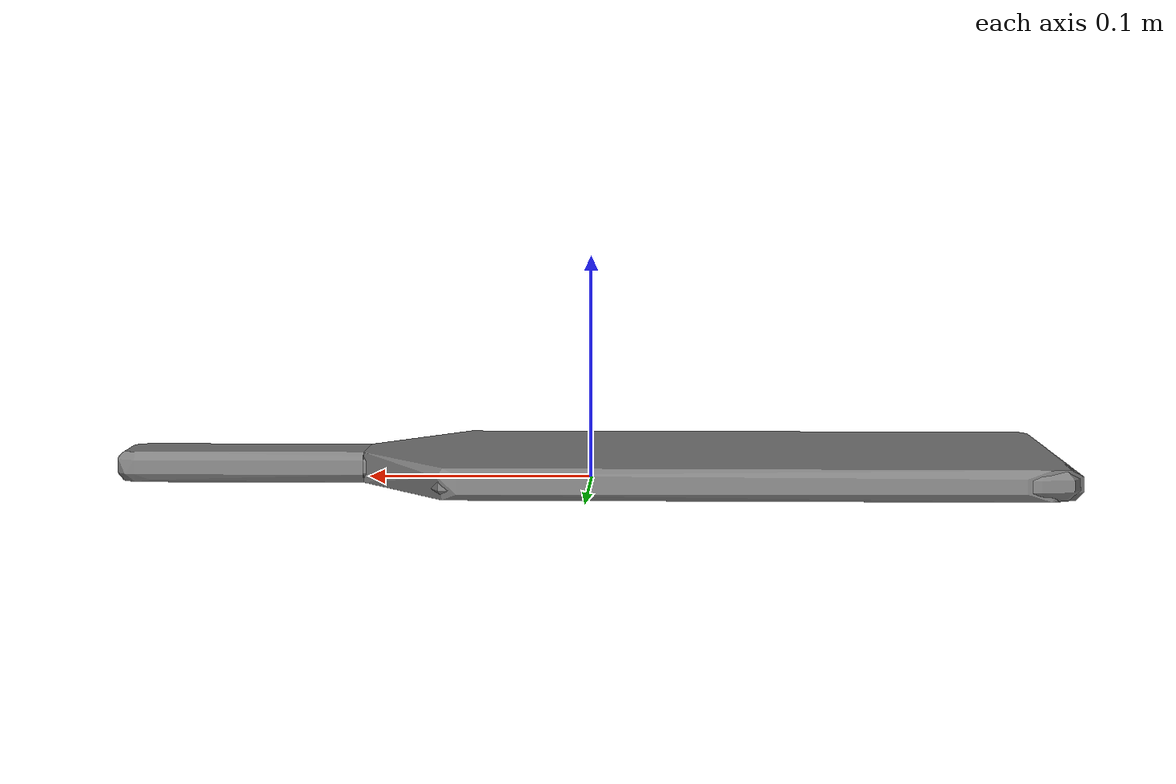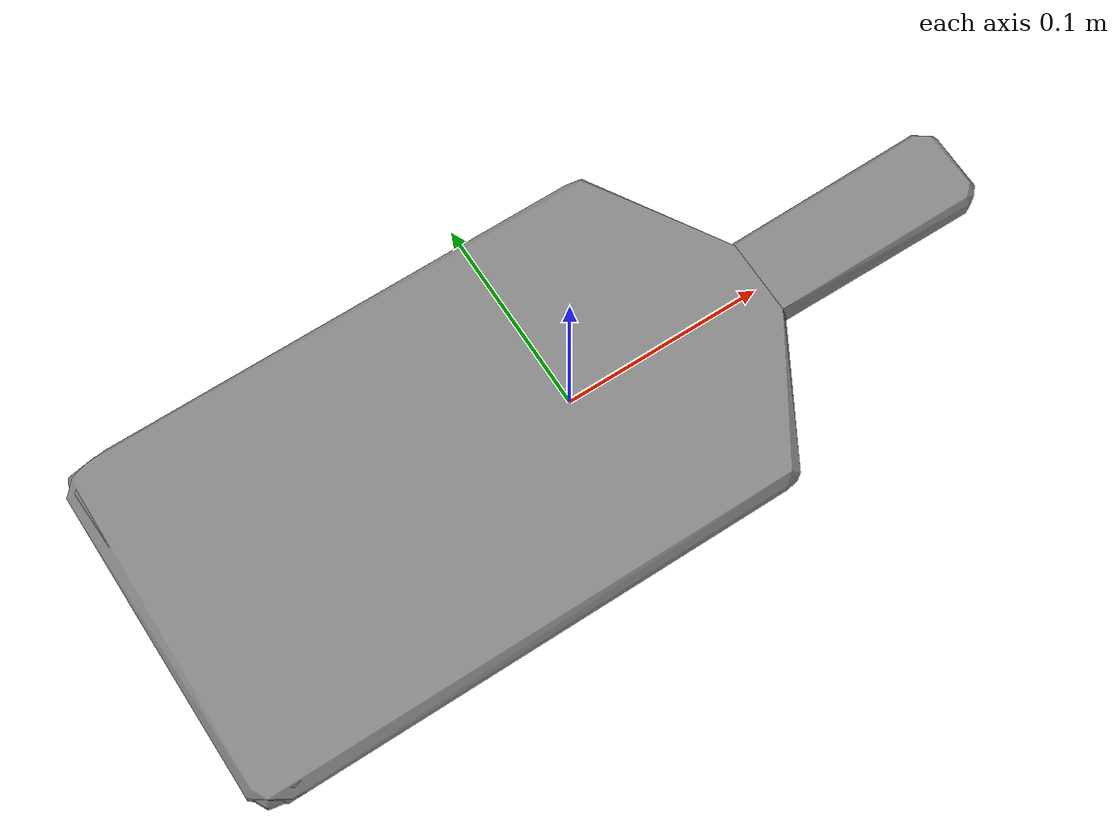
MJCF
<mujoco model="chopping_board3">
  <asset>
    <mesh file="../../meshes/train/chopping_board3/simple_mesh.stl" name="chopping_board3_mesh" scale="1 1 1"/>
    <mesh file="../../meshes/train/chopping_board3/chopping_board3_hull_1.stl" name="chopping_board3_hull_mesh_1" scale="1 1 1"/>
    <mesh file="../../meshes/train/chopping_board3/chopping_board3_hull_2.stl" name="chopping_board3_hull_mesh_2" scale="1 1 1"/>
  </asset>
  <worldbody>
    <body>
      <body name="object">
        <geom pos="0 0 0" mesh="chopping_board3_mesh" type="mesh" contype="0" conaffinity="0" group="1"/>
        <geom pos="0 0 0" mesh="chopping_board3_hull_mesh_1" type="mesh" margin="0.001" solimp="0.998 0.998 0.001" solref="0.001 1" density="2000" friction="0.95 0.3 0.1" group="0" condim="4"/>
        <geom pos="0 0 0" mesh="chopping_board3_hull_mesh_2" type="mesh" margin="0.001" solimp="0.998 0.998 0.001" solref="0.001 1" density="2000" friction="0.95 0.3 0.1" group="0" condim="4"/>
      </body>
      <site rgba="0 0 0 0" size="0.005" pos="0 0 -0.001" name="bottom_site"/>
      <site rgba="0 0 0 0" size="0.005" pos="0 0 0.02" name="top_site"/>
      <site rgba="0 0 0 0" size="0.005" pos="0.0375 0.02 0" name="horizontal_radius_site"/>
    </body>
  </worldbody>
</mujoco>
